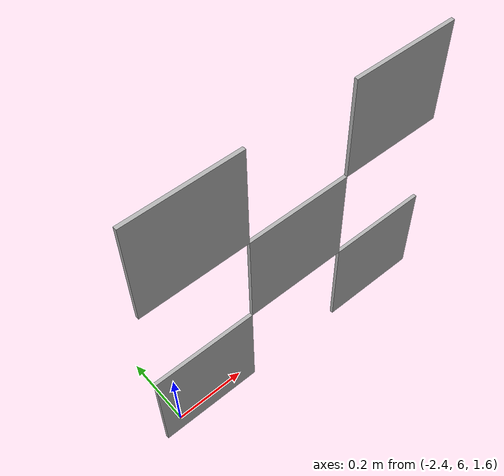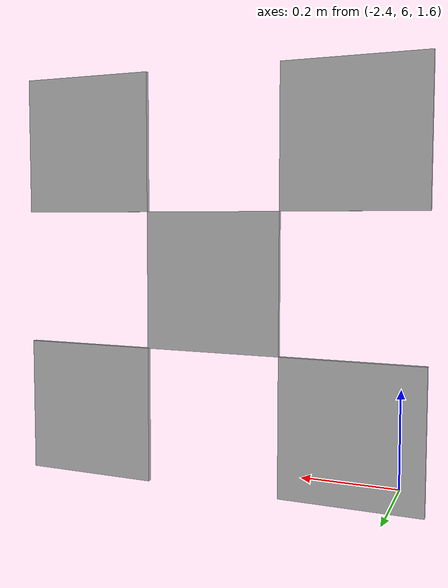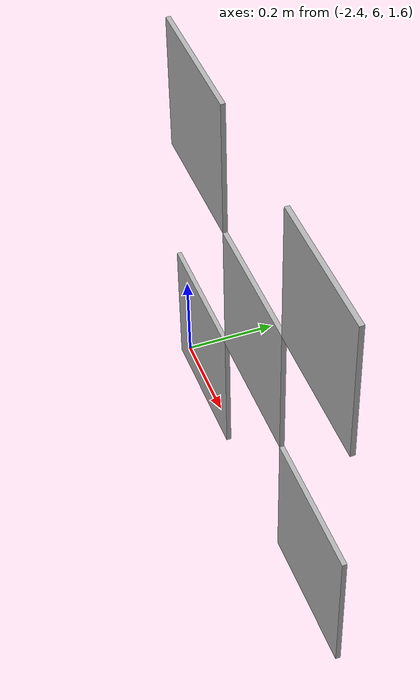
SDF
<?xml version="1.0" ?>
<sdf version="1.4">

	<model name='tag_bundle8'>

		<static>True</static>

		<link name="tag_35">

			<pose>-2 6 2 0 0 1.5713</pose>

			<inertial>
	        	<mass>0.1</mass>

	        	<inertia>
					<ixx>0.0166667</ixx>
					<ixy>0</ixy>
					<ixz>0</ixz>
					<iyy>0.0166667</iyy>
					<iyz>0</iyz>
					<izz>0.0166667</izz>
        		</inertia>

        		<pose frame=''>0 0 0 0 -0 0</pose>
      		</inertial>

			<pose frame=''>0 0 0 0 -0 0</pose>
			<gravity>1</gravity>
			<self_collide>0</self_collide>
			<kinematic>0</kinematic>
			<enable_wind>0</enable_wind>

			<visual name='visual_35'>
				<pose frame=''>0 0 0 0 -0 0</pose>

		        <geometry>
		        	<box>
		        	<size>0.01 0.3 0.3</size>
		        	</box>
		        </geometry>

		        <material>
		        	<lighting>0</lighting>

		        	<script>
		        		<uri>models://media/materials/scripts/Apriltag.material</uri>
		        		<name>Apriltag/id35</name>
		          	</script>

		        	<shader type='vertex'>
		        		<normal_map>__default__</normal_map>
		          	</shader>

		        	<ambient>0.3 0.3 0.3 1</ambient>
		        	<diffuse>0.7 0.7 0.7 1</diffuse>
		        	<specular>0.01 0.01 0.01 1</specular>
		        	<emissive>0 0 0 1</emissive>
		        </material>

		        <transparency>0</transparency>
		        <cast_shadows>1</cast_shadows>
			</visual>

			<collision name='collision_35'>
				<laser_retro>0</laser_retro>
        		<max_contacts>10</max_contacts>
        		<pose frame=''>0 0 0 0 -0 0</pose>

		        <geometry>
		        	<box>
		        		<size>0.01 0.3 0.3</size>
		        	</box>
		        </geometry>

		        <surface>
		        	<friction>
		            	<ode>
		            		<mu>1</mu>
		            		<mu2>1</mu2>
		            		<fdir1>0 0 0</fdir1>
		            		<slip1>0</slip1>
		            		<slip2>0</slip2>
		            	</ode>

		           		<torsional>
		            		<coefficient>1</coefficient>
	            			<patch_radius>0</patch_radius>
	            			<surface_radius>0</surface_radius>
	            			<use_patch_radius>1</use_patch_radius>

	            			<ode>
		                		<slip>0</slip>
		              		</ode>
		            	</torsional>
		          	</friction>

		        	<bounce>
		            	<restitution_coefficient>0</restitution_coefficient>
		            	<threshold>1e+06</threshold>
		        	</bounce>

		        	<contact>
		            	<collide_without_contact>0</collide_without_contact>
		            	<collide_without_contact_bitmask>1</collide_without_contact_bitmask>
		            	<collide_bitmask>1</collide_bitmask>

		            	<ode>
		            		<soft_cfm>0</soft_cfm>
		            		<soft_erp>0.2</soft_erp>
		            		<kp>1e+13</kp>
		            		<kd>1</kd>
		            		<max_vel>0.01</max_vel>
		            		<min_depth>0</min_depth>
		            	</ode>

			            <bullet>
			            	<split_impulse>1</split_impulse>
			            	<split_impulse_penetration_threshold>-0.01</split_impulse_penetration_threshold>
			            	<soft_cfm>0</soft_cfm>
			            	<soft_erp>0.2</soft_erp>
			            	<kp>1e+13</kp>
			            	<kd>1</kd>
			            </bullet>
		        	</contact>
		        </surface>
		    </collision>
		</link>
 -->
		<link name="tag_36">

			<pose>-1.7 6 2.3 0 0 1.5713</pose>

			<inertial>
	        	<mass>0.1</mass>

	        	<inertia>
					<ixx>0.0166667</ixx>
					<ixy>0</ixy>
					<ixz>0</ixz>
					<iyy>0.0166667</iyy>
					<iyz>0</iyz>
					<izz>0.0166667</izz>
        		</inertia>

        		<pose frame=''>0 0 0 0 -0 0</pose>
      		</inertial>

			<pose frame=''>0 0 0 0 -0 0</pose>
			<gravity>1</gravity>
			<self_collide>0</self_collide>
			<kinematic>0</kinematic>
			<enable_wind>0</enable_wind>

			<visual name='visual_36'>
				<pose frame=''>0 0 0 0 -0 0</pose>

		        <geometry>
		        	<box>
		        	<size>0.01 0.3 0.3</size>
		        	</box>
		        </geometry>

		        <material>
		        	<lighting>0</lighting>

		        	<script>
		        		<uri>models://media/materials/scripts/Apriltag.material</uri>
		        		<name>Apriltag/id36</name>
		          	</script>

		        	<shader type='vertex'>
		        		<normal_map>__default__</normal_map>
		          	</shader>

		        	<ambient>0.3 0.3 0.3 1</ambient>
		        	<diffuse>0.7 0.7 0.7 1</diffuse>
		        	<specular>0.01 0.01 0.01 1</specular>
		        	<emissive>0 0 0 1</emissive>
		        </material>

		        <transparency>0</transparency>
		        <cast_shadows>1</cast_shadows>
			</visual>

			<collision name='collision_36'>
				<laser_retro>0</laser_retro>
        		<max_contacts>10</max_contacts>
        		<pose frame=''>0 0 0 0 -0 0</pose>

		        <geometry>
		        	<box>
		        		<size>0.01 0.3 0.3</size>
		        	</box>
		        </geometry>

		        <surface>
		        	<friction>
		            	<ode>
		            		<mu>1</mu>
		            		<mu2>1</mu2>
		            		<fdir1>0 0 0</fdir1>
		            		<slip1>0</slip1>
		            		<slip2>0</slip2>
		            	</ode>

		           		<torsional>
		            		<coefficient>1</coefficient>
	            			<patch_radius>0</patch_radius>
	            			<surface_radius>0</surface_radius>
	            			<use_patch_radius>1</use_patch_radius>

	            			<ode>
		                		<slip>0</slip>
		              		</ode>
		            	</torsional>
		          	</friction>

		        	<bounce>
		            	<restitution_coefficient>0</restitution_coefficient>
		            	<threshold>1e+06</threshold>
		        	</bounce>

		        	<contact>
		            	<collide_without_contact>0</collide_without_contact>
		            	<collide_without_contact_bitmask>1</collide_without_contact_bitmask>
		            	<collide_bitmask>1</collide_bitmask>

		            	<ode>
		            		<soft_cfm>0</soft_cfm>
		            		<soft_erp>0.2</soft_erp>
		            		<kp>1e+13</kp>
		            		<kd>1</kd>
		            		<max_vel>0.01</max_vel>
		            		<min_depth>0</min_depth>
		            	</ode>

			            <bullet>
			            	<split_impulse>1</split_impulse>
			            	<split_impulse_penetration_threshold>-0.01</split_impulse_penetration_threshold>
			            	<soft_cfm>0</soft_cfm>
			            	<soft_erp>0.2</soft_erp>
			            	<kp>1e+13</kp>
			            	<kd>1</kd>
			            </bullet>
		        	</contact>
		        </surface>
		    </collision>
		</link>

		<link name="tag_37">

			<pose>-2.3 6 2.3 0 0 1.5713</pose>

			<inertial>
	        	<mass>0.1</mass>

	        	<inertia>
					<ixx>0.0166667</ixx>
					<ixy>0</ixy>
					<ixz>0</ixz>
					<iyy>0.0166667</iyy>
					<iyz>0</iyz>
					<izz>0.0166667</izz>
        		</inertia>

        		<pose frame=''>0 0 0 0 -0 0</pose>
      		</inertial>

			<pose frame=''>0 0 0 0 -0 0</pose>
			<gravity>1</gravity>
			<self_collide>0</self_collide>
			<kinematic>0</kinematic>
			<enable_wind>0</enable_wind>

			<visual name='visual_37'>
				<pose frame=''>0 0 0 0 -0 0</pose>

		        <geometry>
		        	<box>
		        	<size>0.01 0.3 0.3</size>
		        	</box>
		        </geometry>

		        <material>
		        	<lighting>0</lighting>

		        	<script>
		        		<uri>models://media/materials/scripts/Apriltag.material</uri>
		        		<name>Apriltag/id37</name>
		          	</script>

		        	<shader type='vertex'>
		        		<normal_map>__default__</normal_map>
		          	</shader>

		        	<ambient>0.3 0.3 0.3 1</ambient>
		        	<diffuse>0.7 0.7 0.7 1</diffuse>
		        	<specular>0.01 0.01 0.01 1</specular>
		        	<emissive>0 0 0 1</emissive>
		        </material>

		        <transparency>0</transparency>
		        <cast_shadows>1</cast_shadows>
			</visual>

			<collision name='collision_37'>
				<laser_retro>0</laser_retro>
        		<max_contacts>10</max_contacts>
        		<pose frame=''>0 0 0 0 -0 0</pose>

		        <geometry>
		        	<box>
		        		<size>0.01 0.3 0.3</size>
		        	</box>
		        </geometry>

		        <surface>
		        	<friction>
		            	<ode>
		            		<mu>1</mu>
		            		<mu2>1</mu2>
		            		<fdir1>0 0 0</fdir1>
		            		<slip1>0</slip1>
		            		<slip2>0</slip2>
		            	</ode>

		           		<torsional>
		            		<coefficient>1</coefficient>
	            			<patch_radius>0</patch_radius>
	            			<surface_radius>0</surface_radius>
	            			<use_patch_radius>1</use_patch_radius>

	            			<ode>
		                		<slip>0</slip>
		              		</ode>
		            	</torsional>
		          	</friction>

		        	<bounce>
		            	<restitution_coefficient>0</restitution_coefficient>
		            	<threshold>1e+06</threshold>
		        	</bounce>

		        	<contact>
		            	<collide_without_contact>0</collide_without_contact>
		            	<collide_without_contact_bitmask>1</collide_without_contact_bitmask>
		            	<collide_bitmask>1</collide_bitmask>

		            	<ode>
		            		<soft_cfm>0</soft_cfm>
		            		<soft_erp>0.2</soft_erp>
		            		<kp>1e+13</kp>
		            		<kd>1</kd>
		            		<max_vel>0.01</max_vel>
		            		<min_depth>0</min_depth>
		            	</ode>

			            <bullet>
			            	<split_impulse>1</split_impulse>
			            	<split_impulse_penetration_threshold>-0.01</split_impulse_penetration_threshold>
			            	<soft_cfm>0</soft_cfm>
			            	<soft_erp>0.2</soft_erp>
			            	<kp>1e+13</kp>
			            	<kd>1</kd>
			            </bullet>
		        	</contact>
		        </surface>
		    </collision>
		</link>

		<link name="tag_38">

			<pose>-2.3 6 1.7 0 0 1.5713</pose>

			<inertial>
	        	<mass>0.1</mass>

	        	<inertia>
					<ixx>0.0166667</ixx>
					<ixy>0</ixy>
					<ixz>0</ixz>
					<iyy>0.0166667</iyy>
					<iyz>0</iyz>
					<izz>0.0166667</izz>
        		</inertia>

        		<pose frame=''>0 0 0 0 -0 0</pose>
      		</inertial>

			<pose frame=''>0 0 0 0 -0 0</pose>
			<gravity>1</gravity>
			<self_collide>0</self_collide>
			<kinematic>0</kinematic>
			<enable_wind>0</enable_wind>

			<visual name='visual_38'>
				<pose frame=''>0 0 0 0 -0 0</pose>

		        <geometry>
		        	<box>
		        	<size>0.01 0.3 0.3</size>
		        	</box>
		        </geometry>

		        <material>
		        	<lighting>0</lighting>

		        	<script>
		        		<uri>models://media/materials/scripts/Apriltag.material</uri>
		        		<name>Apriltag/id38</name>
		          	</script>

		        	<shader type='vertex'>
		        		<normal_map>__default__</normal_map>
		          	</shader>

		        	<ambient>0.3 0.3 0.3 1</ambient>
		        	<diffuse>0.7 0.7 0.7 1</diffuse>
		        	<specular>0.01 0.01 0.01 1</specular>
		        	<emissive>0 0 0 1</emissive>
		        </material>

		        <transparency>0</transparency>
		        <cast_shadows>1</cast_shadows>
			</visual>

			<collision name='collision_38'>
				<laser_retro>0</laser_retro>
        		<max_contacts>10</max_contacts>
        		<pose frame=''>0 0 0 0 -0 0</pose>

		        <geometry>
		        	<box>
		        		<size>0.01 0.3 0.3</size>
		        	</box>
		        </geometry>

		        <surface>
		        	<friction>
		            	<ode>
		            		<mu>1</mu>
		            		<mu2>1</mu2>
		            		<fdir1>0 0 0</fdir1>
		            		<slip1>0</slip1>
		            		<slip2>0</slip2>
		            	</ode>

		           		<torsional>
		            		<coefficient>1</coefficient>
	            			<patch_radius>0</patch_radius>
	            			<surface_radius>0</surface_radius>
	            			<use_patch_radius>1</use_patch_radius>

	            			<ode>
		                		<slip>0</slip>
		              		</ode>
		            	</torsional>
		          	</friction>

		        	<bounce>
		            	<restitution_coefficient>0</restitution_coefficient>
		            	<threshold>1e+06</threshold>
		        	</bounce>

		        	<contact>
		            	<collide_without_contact>0</collide_without_contact>
		            	<collide_without_contact_bitmask>1</collide_without_contact_bitmask>
		            	<collide_bitmask>1</collide_bitmask>

		            	<ode>
		            		<soft_cfm>0</soft_cfm>
		            		<soft_erp>0.2</soft_erp>
		            		<kp>1e+13</kp>
		            		<kd>1</kd>
		            		<max_vel>0.01</max_vel>
		            		<min_depth>0</min_depth>
		            	</ode>

			            <bullet>
			            	<split_impulse>1</split_impulse>
			            	<split_impulse_penetration_threshold>-0.01</split_impulse_penetration_threshold>
			            	<soft_cfm>0</soft_cfm>
			            	<soft_erp>0.2</soft_erp>
			            	<kp>1e+13</kp>
			            	<kd>1</kd>
			            </bullet>
		        	</contact>
		        </surface>
		    </collision>
		</link>

		<link name="tag_39">

			<pose>-1.7 6 1.7 0 0 1.5713</pose>

			<inertial>
	        	<mass>0.1</mass>

	        	<inertia>
					<ixx>0.0166667</ixx>
					<ixy>0</ixy>
					<ixz>0</ixz>
					<iyy>0.0166667</iyy>
					<iyz>0</iyz>
					<izz>0.0166667</izz>
        		</inertia>

        		<pose frame=''>0 0 0 0 -0 0</pose>
      		</inertial>

			<pose frame=''>0 0 0 0 -0 0</pose>
			<gravity>1</gravity>
			<self_collide>0</self_collide>
			<kinematic>0</kinematic>
			<enable_wind>0</enable_wind>

			<visual name='visual_39'>
				<pose frame=''>0 0 0 0 -0 0</pose>

		        <geometry>
		        	<box>
		        	<size>0.01 0.3 0.3</size>
		        	</box>
		        </geometry>

		        <material>
		        	<lighting>0</lighting>

		        	<script>
		        		<uri>models://media/materials/scripts/Apriltag.material</uri>
		        		<name>Apriltag/id39</name>
		          	</script>

		        	<shader type='vertex'>
		        		<normal_map>__default__</normal_map>
		          	</shader>

		        	<ambient>0.3 0.3 0.3 1</ambient>
		        	<diffuse>0.7 0.7 0.7 1</diffuse>
		        	<specular>0.01 0.01 0.01 1</specular>
		        	<emissive>0 0 0 1</emissive>
		        </material>

		        <transparency>0</transparency>
		        <cast_shadows>1</cast_shadows>
			</visual>

			<collision name='collision_39'>
				<laser_retro>0</laser_retro>
        		<max_contacts>10</max_contacts>
        		<pose frame=''>0 0 0 0 -0 0</pose>

		        <geometry>
		        	<box>
		        		<size>0.01 0.3 0.3</size>
		        	</box>
		        </geometry>

		        <surface>
		        	<friction>
		            	<ode>
		            		<mu>1</mu>
		            		<mu2>1</mu2>
		            		<fdir1>0 0 0</fdir1>
		            		<slip1>0</slip1>
		            		<slip2>0</slip2>
		            	</ode>

		           		<torsional>
		            		<coefficient>1</coefficient>
	            			<patch_radius>0</patch_radius>
	            			<surface_radius>0</surface_radius>
	            			<use_patch_radius>1</use_patch_radius>

	            			<ode>
		                		<slip>0</slip>
		              		</ode>
		            	</torsional>
		          	</friction>

		        	<bounce>
		            	<restitution_coefficient>0</restitution_coefficient>
		            	<threshold>1e+06</threshold>
		        	</bounce>

		        	<contact>
		            	<collide_without_contact>0</collide_without_contact>
		            	<collide_without_contact_bitmask>1</collide_without_contact_bitmask>
		            	<collide_bitmask>1</collide_bitmask>

		            	<ode>
		            		<soft_cfm>0</soft_cfm>
		            		<soft_erp>0.2</soft_erp>
		            		<kp>1e+13</kp>
		            		<kd>1</kd>
		            		<max_vel>0.01</max_vel>
		            		<min_depth>0</min_depth>
		            	</ode>

			            <bullet>
			            	<split_impulse>1</split_impulse>
			            	<split_impulse_penetration_threshold>-0.01</split_impulse_penetration_threshold>
			            	<soft_cfm>0</soft_cfm>
			            	<soft_erp>0.2</soft_erp>
			            	<kp>1e+13</kp>
			            	<kd>1</kd>
			            </bullet>
		        	</contact>
		        </surface>
		    </collision>
		</link>

		<joint name = "joint_1" type="fixed">
			<axis xyz="0 0 0" />
			<parent link="tag_25" />
			<child link="tag_26" />
	    </joint>

	    <joint name = "joint_2" type="fixed">
			<axis xyz="0 0 0" />
			<parent link="tag_25" />
			<child link="tag_27" />
	    </joint>

	    <joint name = "joint_3" type="fixed">
			<axis xyz="0 0 0" />
			<parent link="tag_25" />
			<child link="tag_28" />
	    </joint>

	    <joint name = "joint_4" type="fixed">
			<axis xyz="0 0 0" />
			<parent link="tag_25" />
			<child link="tag_29" />
	    </joint>

	</model>
</sdf>
